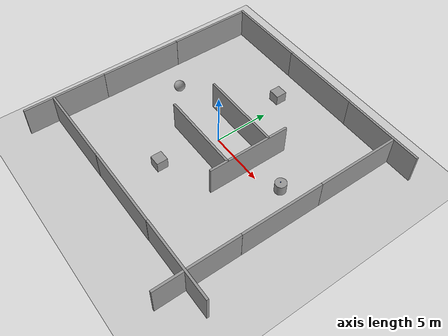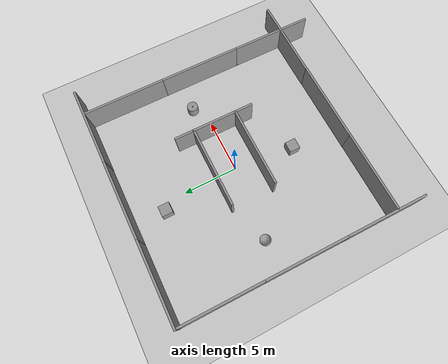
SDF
<sdf version="1.6">
 <world name="default">
  <light name="sun" type="directional">
   <pose>0 0 10 0 -0 0</pose>
   <diffuse>0.8 0.8 0.8 1</diffuse>
   <specular>0.1 0.1 0.1 1</specular>
   <attenuation>
    <range>1000</range>
    <constant>0.9</constant>
    <linear>0.01</linear>
    <quadratic>0.001</quadratic>
   </attenuation>
   <direction>-0.5 0.5 -1</direction>
  </light>
  <model name="ground_plane">
   <static>1</static>
   <link name="link">
    <collision name="collision">
     <geometry><plane><normal>0 0 1</normal><size>100 100</size></plane></geometry>
     <surface><friction><ode><mu>100</mu><mu2>50</mu2></ode></friction></surface>
    </collision>
    <visual name="visual">
     <cast_shadows>0</cast_shadows>
     <geometry><plane><normal>0 0 1</normal><size>100 100</size></plane></geometry>
     <material>
      <script><uri>file://media/materials/scripts/gazebo.material</uri><name>Gazebo/Grey</name></script>
     </material>
    </visual>
   </link>
  </model>
  <gravity>0 0 -9.8</gravity>
  <magnetic_field>6e-06 2.3e-05 -4.2e-05</magnetic_field>
  <atmosphere type="adiabatic"/>
  <physics name="default_physics" default="0" type="ode">
   <max_step_size>0.001</max_step_size>
   <real_time_factor>1</real_time_factor>
   <real_time_update_rate>1000</real_time_update_rate>
  </physics>
  <scene><ambient>0.4 0.4 0.4 1</ambient><background>0.7 0.7 0.7 1</background><shadows>1</shadows></scene>
  <spherical_coordinates>
   <surface_model>EARTH_WGS84</surface_model>
   <latitude_deg>0</latitude_deg>
   <longitude_deg>0</longitude_deg>
   <elevation>0</elevation>
   <heading_deg>0</heading_deg>
  </spherical_coordinates>
  <model name="grey_wall">
   <static>1</static>
   <link name="link">
    <pose>0 0 1.4 0 -0 0</pose>
    <collision name="collision"><geometry><box><size>7.5 0.2 2.8</size></box></geometry></collision>
    <visual name="visual">
     <cast_shadows>0</cast_shadows>
     <geometry><box><size>7.5 0.2 2.8</size></box></geometry>
     <material>
      <script>
       <uri>model://grey_wall/materials/scripts</uri>
       <uri>model://grey_wall/materials/textures</uri>
       <name>vrc/grey_wall</name>
      </script>
     </material>
    </visual>
   </link>
   <pose>-6.23529 10.0073 0 0 -0 0</pose>
  </model>
  <model name="grey_wall_0">
   <static>1</static>
   <link name="link">
    <pose>0 0 1.4 0 -0 0</pose>
    <collision name="collision"><geometry><box><size>7.5 0.2 2.8</size></box></geometry></collision>
    <visual name="visual">
     <cast_shadows>0</cast_shadows>
     <geometry><box><size>7.5 0.2 2.8</size></box></geometry>
     <material>
      <script>
       <uri>model://grey_wall/materials/scripts</uri>
       <uri>model://grey_wall/materials/textures</uri>
       <name>vrc/grey_wall</name>
      </script>
     </material>
    </visual>
   </link>
   <pose>1.17917 10.0046 0 0 -0 0</pose>
  </model>
  <model name="grey_wall_1">
   <static>1</static>
   <link name="link">
    <pose>0 0 1.4 0 -0 0</pose>
    <collision name="collision"><geometry><box><size>7.5 0.2 2.8</size></box></geometry></collision>
    <visual name="visual">
     <cast_shadows>0</cast_shadows>
     <geometry><box><size>7.5 0.2 2.8</size></box></geometry>
     <material>
      <script>
       <uri>model://grey_wall/materials/scripts</uri>
       <uri>model://grey_wall/materials/textures</uri>
       <name>vrc/grey_wall</name>
      </script>
     </material>
    </visual>
   </link>
   <pose>8.59377 9.98823 0 0 -0 0</pose>
  </model>
  <model name="grey_wall_2">
   <static>1</static>
   <link name="link">
    <pose>0 0 1.4 0 -0 0</pose>
    <collision name="collision"><geometry><box><size>7.5 0.2 2.8</size></box></geometry></collision>
    <visual name="visual">
     <cast_shadows>0</cast_shadows>
     <geometry><box><size>7.5 0.2 2.8</size></box></geometry>
     <material>
      <script>
       <uri>model://grey_wall/materials/scripts</uri>
       <uri>model://grey_wall/materials/textures</uri>
       <name>vrc/grey_wall</name>
      </script>
     </material>
    </visual>
   </link>
   <pose>-6.26258 -9.90234 0 0 -0 0</pose>
  </model>
  <model name="grey_wall_3">
   <static>1</static>
   <link name="link">
    <pose>0 0 1.4 0 -0 0</pose>
    <collision name="collision"><geometry><box><size>7.5 0.2 2.8</size></box></geometry></collision>
    <visual name="visual">
     <cast_shadows>0</cast_shadows>
     <geometry><box><size>7.5 0.2 2.8</size></box></geometry>
     <material>
      <script>
       <uri>model://grey_wall/materials/scripts</uri>
       <uri>model://grey_wall/materials/textures</uri>
       <name>vrc/grey_wall</name>
      </script>
     </material>
    </visual>
   </link>
   <pose>1.13567 -9.88945 0 0 -0 0</pose>
  </model>
  <model name="grey_wall_4">
   <static>1</static>
   <link name="link">
    <pose>0 0 1.4 0 -0 0</pose>
    <collision name="collision"><geometry><box><size>7.5 0.2 2.8</size></box></geometry></collision>
    <visual name="visual">
     <cast_shadows>0</cast_shadows>
     <geometry><box><size>7.5 0.2 2.8</size></box></geometry>
     <material>
      <script>
       <uri>model://grey_wall/materials/scripts</uri>
       <uri>model://grey_wall/materials/textures</uri>
       <name>vrc/grey_wall</name>
      </script>
     </material>
    </visual>
   </link>
   <pose>8.60576 -9.87213 0 0 -0 0</pose>
  </model>
  <model name="grey_wall_5">
   <static>1</static>
   <link name="link">
    <pose>0 0 1.4 0 -0 0</pose>
    <collision name="collision"><geometry><box><size>7.5 0.2 2.8</size></box></geometry></collision>
    <visual name="visual">
     <cast_shadows>0</cast_shadows>
     <geometry><box><size>7.5 0.2 2.8</size></box></geometry>
     <material>
      <script>
       <uri>model://grey_wall/materials/scripts</uri>
       <uri>model://grey_wall/materials/textures</uri>
       <name>vrc/grey_wall</name>
      </script>
     </material>
    </visual>
   </link>
   <pose>-9.90138 6.14756 0 0 -0 1.56377</pose>
  </model>
  <model name="grey_wall_5_clone">
   <static>1</static>
   <link name="link">
    <pose>0 0 1.4 0 -0 0</pose>
    <collision name="collision"><geometry><box><size>7.5 0.2 2.8</size></box></geometry></collision>
    <visual name="visual">
     <cast_shadows>0</cast_shadows>
     <geometry><box><size>7.5 0.2 2.8</size></box></geometry>
     <material>
      <script>
       <uri>model://grey_wall/materials/scripts</uri>
       <uri>model://grey_wall/materials/textures</uri>
       <name>vrc/grey_wall</name>
      </script>
     </material>
    </visual>
   </link>
   <pose>-9.95994 -1.35198 0 0 -0 1.56377</pose>
  </model>
  <model name="grey_wall_5_clone_0">
   <static>1</static>
   <link name="link">
    <pose>0 0 1.4 0 -0 0</pose>
    <collision name="collision"><geometry><box><size>7.5 0.2 2.8</size></box></geometry></collision>
    <visual name="visual">
     <cast_shadows>0</cast_shadows>
     <geometry><box><size>7.5 0.2 2.8</size></box></geometry>
     <material>
      <script>
       <uri>model://grey_wall/materials/scripts</uri>
       <uri>model://grey_wall/materials/textures</uri>
       <name>vrc/grey_wall</name>
      </script>
     </material>
    </visual>
   </link>
   <pose>-10.0185 -8.85232 0 0 -0 1.56377</pose>
  </model>
  <model name="grey_wall_5_clone_1">
   <static>1</static>
   <link name="link">
    <pose>0 0 1.4 0 -0 0</pose>
    <collision name="collision"><geometry><box><size>7.5 0.2 2.8</size></box></geometry></collision>
    <visual name="visual">
     <cast_shadows>0</cast_shadows>
     <geometry><box><size>7.5 0.2 2.8</size></box></geometry>
     <material>
      <script>
       <uri>model://grey_wall/materials/scripts</uri>
       <uri>model://grey_wall/materials/textures</uri>
       <name>vrc/grey_wall</name>
      </script>
     </material>
    </visual>
   </link>
   <pose>9.84772 6.13697 0 0 -0 1.56377</pose>
  </model>
  <model name="grey_wall_5_clone_2">
   <static>1</static>
   <link name="link">
    <pose>0 0 1.4 0 -0 0</pose>
    <collision name="collision"><geometry><box><size>7.5 0.2 2.8</size></box></geometry></collision>
    <visual name="visual">
     <cast_shadows>0</cast_shadows>
     <geometry><box><size>7.5 0.2 2.8</size></box></geometry>
     <material>
      <script>
       <uri>model://grey_wall/materials/scripts</uri>
       <uri>model://grey_wall/materials/textures</uri>
       <name>vrc/grey_wall</name>
      </script>
     </material>
    </visual>
   </link>
   <pose>9.794 -1.36371 0 0 -0 1.56377</pose>
  </model>
  <model name="grey_wall_5_clone_3">
   <static>1</static>
   <link name="link">
    <pose>0 0 1.4 0 -0 0</pose>
    <collision name="collision"><geometry><box><size>7.5 0.2 2.8</size></box></geometry></collision>
    <visual name="visual">
     <cast_shadows>0</cast_shadows>
     <geometry><box><size>7.5 0.2 2.8</size></box></geometry>
     <material>
      <script>
       <uri>model://grey_wall/materials/scripts</uri>
       <uri>model://grey_wall/materials/textures</uri>
       <name>vrc/grey_wall</name>
      </script>
     </material>
    </visual>
   </link>
   <pose>9.73487 -8.85817 0 0 -0 1.56377</pose>
  </model>
  <model name="grey_wall_6">
   <static>1</static>
   <link name="link">
    <pose>0 0 1.4 0 -0 0</pose>
    <collision name="collision"><geometry><box><size>7.5 0.2 2.8</size></box></geometry></collision>
    <visual name="visual">
     <cast_shadows>0</cast_shadows>
     <geometry><box><size>7.5 0.2 2.8</size></box></geometry>
     <material>
      <script>
       <uri>model://grey_wall/materials/scripts</uri>
       <uri>model://grey_wall/materials/textures</uri>
       <name>vrc/grey_wall</name>
      </script>
     </material>
    </visual>
   </link>
   <pose>0.280508 -2.06689 0 0 -0 0</pose>
  </model>
  <model name="grey_wall_7">
   <static>1</static>
   <link name="link">
    <pose>0 0 1.4 0 -0 0</pose>
    <collision name="collision"><geometry><box><size>7.5 0.2 2.8</size></box></geometry></collision>
    <visual name="visual">
     <cast_shadows>0</cast_shadows>
     <geometry><box><size>7.5 0.2 2.8</size></box></geometry>
     <material>
      <script>
       <uri>model://grey_wall/materials/scripts</uri>
       <uri>model://grey_wall/materials/textures</uri>
       <name>vrc/grey_wall</name>
      </script>
     </material>
    </visual>
   </link>
   <pose>0.262102 1.97842 0 0 -0 0</pose>
  </model>
  <model name="grey_wall_5_clone_2_clone">
   <static>1</static>
   <link name="link">
    <pose>0 0 1.4 0 -0 0</pose>
    <collision name="collision"><geometry><box><size>7.5 0.2 2.8</size></box></geometry></collision>
    <visual name="visual">
     <cast_shadows>0</cast_shadows>
     <geometry><box><size>7.5 0.2 2.8</size></box></geometry>
     <material>
      <script>
       <uri>model://grey_wall/materials/scripts</uri>
       <uri>model://grey_wall/materials/textures</uri>
       <name>vrc/grey_wall</name>
      </script>
     </material>
    </visual>
   </link>
   <pose>3.95985 0.045202 0 0 -0 1.56377</pose>
  </model>
  <model name="unit_box_0">
   <pose>-0.639105 -5.50262 0.499995 0 1e-05 0</pose>
   <link name="link">
    <inertial>
     <mass>1</mass>
     <inertia>
      <ixx>0.166667</ixx>
      <ixy>0</ixy>
      <ixz>0</ixz>
      <iyy>0.166667</iyy>
      <iyz>0</iyz>
      <izz>0.166667</izz>
     </inertia>
    </inertial>
    <collision name="collision"><geometry><box><size>1 1 1</size></box></geometry></collision>
    <visual name="visual">
     <geometry><box><size>1 1 1</size></box></geometry>
     <material>
      <script><name>Gazebo/Grey</name><uri>file://media/materials/scripts/gazebo.material</uri></script>
     </material>
    </visual>
   </link>
  </model>
  <model name="unit_box_1">
   <pose>-0.784896 7.09973 0.499995 -1e-05 0 0</pose>
   <link name="link">
    <inertial>
     <mass>1</mass>
     <inertia>
      <ixx>0.166667</ixx>
      <ixy>0</ixy>
      <ixz>0</ixz>
      <iyy>0.166667</iyy>
      <iyz>0</iyz>
      <izz>0.166667</izz>
     </inertia>
    </inertial>
    <collision name="collision"><geometry><box><size>1 1 1</size></box></geometry></collision>
    <visual name="visual">
     <geometry><box><size>1 1 1</size></box></geometry>
     <material>
      <script><name>Gazebo/Grey</name><uri>file://media/materials/scripts/gazebo.material</uri></script>
     </material>
    </visual>
   </link>
  </model>
  <model name="unit_sphere_0">
   <pose>-6.94544 0.666407 0.5 0 -0 0</pose>
   <link name="link">
    <inertial>
     <mass>1</mass>
     <inertia><ixx>0.1</ixx><ixy>0</ixy><ixz>0</ixz><iyy>0.1</iyy><iyz>0</iyz><izz>0.1</izz></inertia>
    </inertial>
    <collision name="collision"><geometry><sphere><radius>0.5</radius></sphere></geometry></collision>
    <visual name="visual">
     <geometry><sphere><radius>0.5</radius></sphere></geometry>
     <material>
      <script><name>Gazebo/Grey</name><uri>file://media/materials/scripts/gazebo.material</uri></script>
     </material>
    </visual>
   </link>
  </model>
  <model name="unit_cylinder_0">
   <pose>7.04153 0.911269 0.49999 0 -0 0.033811</pose>
   <link name="link">
    <inertial>
     <mass>1</mass>
     <inertia><ixx>0.145833</ixx><ixy>0</ixy><ixz>0</ixz><iyy>0.145833</iyy><iyz>0</iyz><izz>0.125</izz></inertia>
    </inertial>
    <collision name="collision">
     <geometry><cylinder><radius>0.5</radius><length>1</length></cylinder></geometry>
    </collision>
    <visual name="visual">
     <geometry><cylinder><radius>0.5</radius><length>1</length></cylinder></geometry>
     <material>
      <script><name>Gazebo/Grey</name><uri>file://media/materials/scripts/gazebo.material</uri></script>
     </material>
    </visual>
   </link>
  </model>
  <model name="demo_cube_0">
   <static>0</static>
   <link name="link">
    <inertial>
     <mass>0.25</mass>
     <inertia><ixx>0.001</ixx><ixy>0</ixy><ixz>0</ixz><iyy>0.001</iyy><iyz>0</iyz><izz>0.001</izz></inertia>
    </inertial>
    <collision name="collision">
     <geometry><box><size>0.06 0.06 0.06</size></box></geometry>
     <surface>
      <friction><ode><mu>30</mu><mu2>30</mu2></ode></friction>
      <contact><ode><kp>1e+06</kp><kd>100</kd><max_vel>1</max_vel><min_depth>0.002</min_depth></ode></contact>
     </surface>
    </collision>
    <visual name="visual">
     <geometry><box><size>0.06 0.06 0.06</size></box></geometry>
     <material>
      <script><uri>file://media/materials/scripts/gazebo.material</uri><name>Gazebo/Blue</name></script>
     </material>
    </visual>
    <velocity_decay><linear>0</linear><angular>0</angular></velocity_decay>
   </link>
   <pose>7.00039 0.900921 1.02999 -0 -1e-06 0.052571</pose>
  </model>
 </world>
</sdf>
